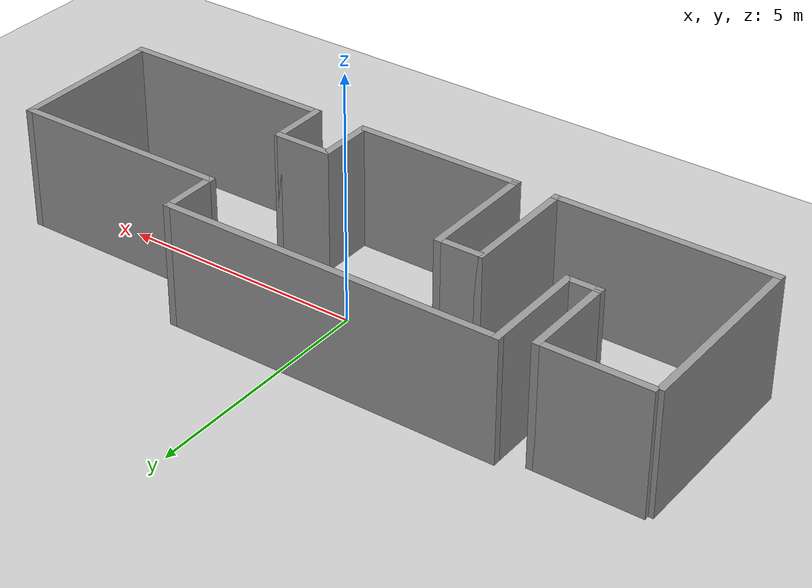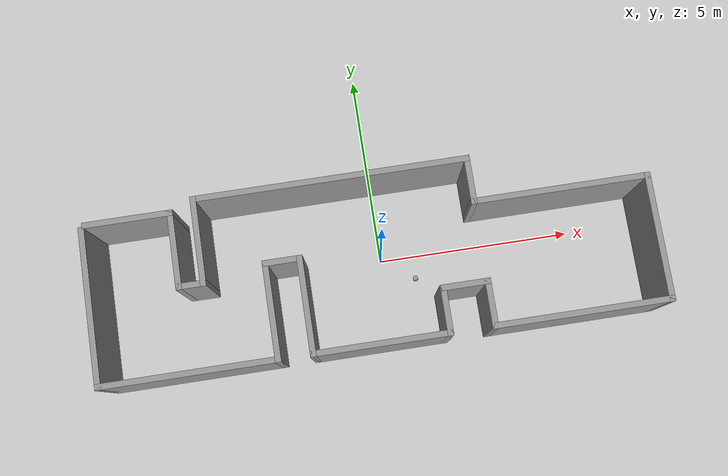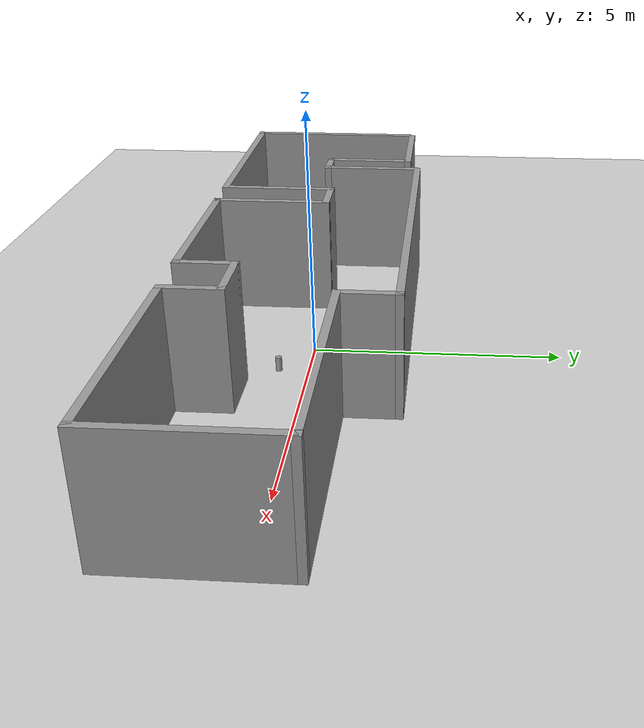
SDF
<sdf version="1.7">
 <world name="default">
  <light name="sun" type="directional">
   <pose>0 0 10 0 -0 0</pose>
   <diffuse>0.8 0.8 0.8 1</diffuse>
   <specular>0.2 0.2 0.2 1</specular>
   <attenuation>
    <range>1000</range>
    <constant>0.9</constant>
    <linear>0.01</linear>
    <quadratic>0.001</quadratic>
   </attenuation>
   <direction>-0.5 0.1 -0.9</direction>
   <spot><inner_angle>0</inner_angle><outer_angle>0</outer_angle><falloff>0</falloff></spot>
  </light>
  <model name="ground_plane">
   <static>1</static>
   <link name="link">
    <collision name="collision">
     <geometry><plane><normal>0 0 1</normal><size>100 100</size></plane></geometry>
     <surface>
      <contact><collide_bitmask>65535</collide_bitmask></contact>
      <friction><ode><mu>100</mu><mu2>50</mu2></ode></friction>
     </surface>
    </collision>
    <visual name="visual">
     <cast_shadows>0</cast_shadows>
     <geometry><plane><normal>0 0 1</normal><size>100 100</size></plane></geometry>
     <material>
      <script><uri>file://media/materials/scripts/gazebo.material</uri><name>Gazebo/Grey</name></script>
     </material>
    </visual>
   </link>
  </model>
  <gravity>0 0 -9.8</gravity>
  <magnetic_field>6e-06 2.3e-05 -4.2e-05</magnetic_field>
  <atmosphere type="adiabatic"/>
  <physics type="ode">
   <max_step_size>0.001</max_step_size>
   <real_time_factor>1</real_time_factor>
   <real_time_update_rate>1000</real_time_update_rate>
  </physics>
  <scene><ambient>0.4 0.4 0.4 1</ambient><background>0.7 0.7 0.7 1</background><shadows>1</shadows></scene>
  <spherical_coordinates>
   <surface_model>EARTH_WGS84</surface_model>
   <latitude_deg>0</latitude_deg>
   <longitude_deg>0</longitude_deg>
   <elevation>0</elevation>
   <heading_deg>0</heading_deg>
  </spherical_coordinates>
  <model name="my.world">
   <pose>-0.21418 -0.099615 0 0 -0 0</pose>
   <link name="Wall_0">
    <collision name="Wall_0_Collision">
     <geometry><box><size>4 0.15 2.5</size></box></geometry>
     <pose>0 0 1.25 0 -0 0</pose>
    </collision>
    <visual name="Wall_0_Visual">
     <pose>0 0 1.25 0 -0 0</pose>
     <geometry><box><size>4 0.15 2.5</size></box></geometry>
     <material>
      <script><uri>file://media/materials/scripts/gazebo.material</uri><name>Gazebo/Grey</name></script>
      <ambient>1 1 1 1</ambient>
     </material>
     <meta><layer>0</layer></meta>
    </visual>
    <pose>-7 -0.2825 0 0 -0 -1.5708</pose>
   </link>
   <link name="Wall_1">
    <collision name="Wall_1_Collision">
     <geometry><box><size>4.5 0.15 2.5</size></box></geometry>
     <pose>0 0 1.25 0 -0 0</pose>
    </collision>
    <visual name="Wall_1_Visual">
     <pose>0 0 1.25 0 -0 0</pose>
     <geometry><box><size>4.5 0.15 2.5</size></box></geometry>
     <material>
      <script><uri>file://media/materials/scripts/gazebo.material</uri><name>Gazebo/Grey</name></script>
      <ambient>1 1 1 1</ambient>
     </material>
     <meta><layer>0</layer></meta>
    </visual>
    <pose>-4.825 -2.2075 0 0 -0 0</pose>
   </link>
   <link name="Wall_10">
    <collision name="Wall_10_Collision">
     <geometry><box><size>3.25 0.15 2.5</size></box></geometry>
     <pose>0 0 1.25 0 -0 0</pose>
    </collision>
    <visual name="Wall_10_Visual">
     <pose>0 0 1.25 0 -0 0</pose>
     <geometry><box><size>3.25 0.15 2.5</size></box></geometry>
     <material>
      <script><uri>file://media/materials/scripts/gazebo.material</uri><name>Gazebo/Grey</name></script>
      <ambient>1 1 1 1</ambient>
     </material>
     <meta><layer>0</layer></meta>
    </visual>
    <pose>7 -0.6575 0 0 -0 1.5708</pose>
   </link>
   <link name="Wall_11">
    <collision name="Wall_11_Collision">
     <geometry><box><size>4.5 0.15 2.5</size></box></geometry>
     <pose>0 0 1.25 0 -0 0</pose>
    </collision>
    <visual name="Wall_11_Visual">
     <pose>0 0 1.25 0 -0 0</pose>
     <geometry><box><size>4.5 0.15 2.5</size></box></geometry>
     <material>
      <script><uri>file://media/materials/scripts/gazebo.material</uri><name>Gazebo/Grey</name></script>
      <ambient>1 1 1 1</ambient>
     </material>
     <meta><layer>0</layer></meta>
    </visual>
    <pose>4.825 0.8925 0 0 -0 3.14159</pose>
   </link>
   <link name="Wall_12">
    <collision name="Wall_12_Collision">
     <geometry><box><size>1.25 0.15 2.5</size></box></geometry>
     <pose>0 0 1.25 0 -0 0</pose>
    </collision>
    <visual name="Wall_12_Visual">
     <pose>0 0 1.25 0 -0 0</pose>
     <geometry><box><size>1.25 0.15 2.5</size></box></geometry>
     <material>
      <script><uri>file://media/materials/scripts/gazebo.material</uri><name>Gazebo/Grey</name></script>
      <ambient>1 1 1 1</ambient>
     </material>
     <meta><layer>0</layer></meta>
    </visual>
    <pose>2.65 1.4425 0 0 -0 1.5708</pose>
   </link>
   <link name="Wall_13">
    <collision name="Wall_13_Collision">
     <geometry><box><size>7 0.15 2.5</size></box></geometry>
     <pose>0 0 1.25 0 -0 0</pose>
    </collision>
    <visual name="Wall_13_Visual">
     <pose>0 0 1.25 0 -0 0</pose>
     <geometry><box><size>7 0.15 2.5</size></box></geometry>
     <material>
      <script><uri>file://media/materials/scripts/gazebo.material</uri><name>Gazebo/Grey</name></script>
      <ambient>1 1 1 1</ambient>
     </material>
     <meta><layer>0</layer></meta>
    </visual>
    <pose>-0.775 1.9925 0 0 -0 3.14159</pose>
   </link>
   <link name="Wall_14">
    <collision name="Wall_14_Collision">
     <geometry><box><size>2.25 0.15 2.5</size></box></geometry>
     <pose>0 0 1.25 0 -0 0</pose>
    </collision>
    <visual name="Wall_14_Visual">
     <pose>0 0 1.25 0 -0 0</pose>
     <geometry><box><size>2.25 0.15 2.5</size></box></geometry>
     <material>
      <script><uri>file://media/materials/scripts/gazebo.material</uri><name>Gazebo/Grey</name></script>
      <ambient>1 1 1 1</ambient>
     </material>
     <meta><layer>0</layer></meta>
    </visual>
    <pose>-4.2 0.9425 0 0 -0 -1.5708</pose>
   </link>
   <link name="Wall_15">
    <collision name="Wall_15_Collision">
     <geometry><box><size>0.75 0.15 2.5</size></box></geometry>
     <pose>0 0 1.25 0 -0 0</pose>
    </collision>
    <visual name="Wall_15_Visual">
     <pose>0 0 1.25 0 -0 0</pose>
     <geometry><box><size>0.75 0.15 2.5</size></box></geometry>
     <material>
      <script><uri>file://media/materials/scripts/gazebo.material</uri><name>Gazebo/Grey</name></script>
      <ambient>1 1 1 1</ambient>
     </material>
     <meta><layer>0</layer></meta>
    </visual>
    <pose>-4.5 -0.1075 0 0 -0 3.14159</pose>
   </link>
   <link name="Wall_16">
    <collision name="Wall_16_Collision">
     <geometry><box><size>2 0.15 2.5</size></box></geometry>
     <pose>0 0 1.25 0 -0 0</pose>
    </collision>
    <visual name="Wall_16_Visual">
     <pose>0 0 1.25 0 -0 0</pose>
     <geometry><box><size>2 0.15 2.5</size></box></geometry>
     <material>
      <script><uri>file://media/materials/scripts/gazebo.material</uri><name>Gazebo/Grey</name></script>
      <ambient>1 1 1 1</ambient>
     </material>
     <meta><layer>0</layer></meta>
    </visual>
    <pose>-4.8 0.8175 0 0 -0 1.5708</pose>
   </link>
   <link name="Wall_17">
    <collision name="Wall_17_Collision">
     <geometry><box><size>2.25 0.15 2.5</size></box></geometry>
     <pose>0 0 1.25 0 -0 0</pose>
    </collision>
    <visual name="Wall_17_Visual">
     <pose>0 0 1.25 0 -0 0</pose>
     <geometry><box><size>2.25 0.15 2.5</size></box></geometry>
     <material>
      <script><uri>file://media/materials/scripts/gazebo.material</uri><name>Gazebo/Grey</name></script>
      <ambient>1 1 1 1</ambient>
     </material>
     <meta><layer>0</layer></meta>
    </visual>
    <pose>-5.85 1.7425 0 0 -0 3.14159</pose>
   </link>
   <link name="Wall_2">
    <collision name="Wall_2_Collision">
     <geometry><box><size>2.5 0.15 2.5</size></box></geometry>
     <pose>0 0 1.25 0 -0 0</pose>
    </collision>
    <visual name="Wall_2_Visual">
     <pose>0 0 1.25 0 -0 0</pose>
     <geometry><box><size>2.5 0.15 2.5</size></box></geometry>
     <material>
      <script><uri>file://media/materials/scripts/gazebo.material</uri><name>Gazebo/Grey</name></script>
      <ambient>1 1 1 1</ambient>
     </material>
     <meta><layer>0</layer></meta>
    </visual>
    <pose>-2.65 -1.0325 0 0 -0 1.5708</pose>
   </link>
   <link name="Wall_3">
    <collision name="Wall_3_Collision">
     <geometry><box><size>1 0.15 2.5</size></box></geometry>
     <pose>0 0 1.25 0 -0 0</pose>
    </collision>
    <visual name="Wall_3_Visual">
     <pose>0 0 1.25 0 -0 0</pose>
     <geometry><box><size>1 0.15 2.5</size></box></geometry>
     <material>
      <script><uri>file://media/materials/scripts/gazebo.material</uri><name>Gazebo/Grey</name></script>
      <ambient>1 1 1 1</ambient>
     </material>
     <meta><layer>0</layer></meta>
    </visual>
    <pose>-2.225 0.1425 0 0 -0 0</pose>
   </link>
   <link name="Wall_4">
    <collision name="Wall_4_Collision">
     <geometry><box><size>2.5 0.15 2.5</size></box></geometry>
     <pose>0 0 1.25 0 -0 0</pose>
    </collision>
    <visual name="Wall_4_Visual">
     <pose>0 0 1.25 0 -0 0</pose>
     <geometry><box><size>2.5 0.15 2.5</size></box></geometry>
     <material>
      <script><uri>file://media/materials/scripts/gazebo.material</uri><name>Gazebo/Grey</name></script>
      <ambient>1 1 1 1</ambient>
     </material>
     <meta><layer>0</layer></meta>
    </visual>
    <pose>-1.8 -1.0325 0 0 -0 -1.5708</pose>
   </link>
   <link name="Wall_5">
    <collision name="Wall_5_Collision">
     <geometry><box><size>3.5 0.15 2.5</size></box></geometry>
     <pose>0 0 1.25 0 -0 0</pose>
    </collision>
    <visual name="Wall_5_Visual">
     <pose>0 0 1.25 0 -0 0</pose>
     <geometry><box><size>3.5 0.15 2.5</size></box></geometry>
     <material>
      <script><uri>file://media/materials/scripts/gazebo.material</uri><name>Gazebo/Grey</name></script>
      <ambient>1 1 1 1</ambient>
     </material>
     <meta><layer>0</layer></meta>
    </visual>
    <pose>-0.125 -2.2075 0 0 -0 0</pose>
   </link>
   <link name="Wall_6">
    <collision name="Wall_6_Collision">
     <geometry><box><size>1.25 0.15 2.5</size></box></geometry>
     <pose>0 0 1.25 0 -0 0</pose>
    </collision>
    <visual name="Wall_6_Visual">
     <pose>0 0 1.25 0 -0 0</pose>
     <geometry><box><size>1.25 0.15 2.5</size></box></geometry>
     <material>
      <script><uri>file://media/materials/scripts/gazebo.material</uri><name>Gazebo/Grey</name></script>
      <ambient>1 1 1 1</ambient>
     </material>
     <meta><layer>0</layer></meta>
    </visual>
    <pose>1.55 -1.6575 0 0 -0 1.5708</pose>
   </link>
   <link name="Wall_7">
    <collision name="Wall_7_Collision">
     <geometry><box><size>1.25 0.15 2.5</size></box></geometry>
     <pose>0 0 1.25 0 -0 0</pose>
    </collision>
    <visual name="Wall_7_Visual">
     <pose>0 0 1.25 0 -0 0</pose>
     <geometry><box><size>1.25 0.15 2.5</size></box></geometry>
     <material>
      <script><uri>file://media/materials/scripts/gazebo.material</uri><name>Gazebo/Grey</name></script>
      <ambient>1 1 1 1</ambient>
     </material>
     <meta><layer>0</layer></meta>
    </visual>
    <pose>2.1 -1.1075 0 0 -0 0</pose>
   </link>
   <link name="Wall_8">
    <collision name="Wall_8_Collision">
     <geometry><box><size>1.25 0.15 2.5</size></box></geometry>
     <pose>0 0 1.25 0 -0 0</pose>
    </collision>
    <visual name="Wall_8_Visual">
     <pose>0 0 1.25 0 -0 0</pose>
     <geometry><box><size>1.25 0.15 2.5</size></box></geometry>
     <material>
      <script><uri>file://media/materials/scripts/gazebo.material</uri><name>Gazebo/Grey</name></script>
      <ambient>1 1 1 1</ambient>
     </material>
     <meta><layer>0</layer></meta>
    </visual>
    <pose>2.65 -1.6575 0 0 -0 -1.5708</pose>
   </link>
   <link name="Wall_9">
    <collision name="Wall_9_Collision">
     <geometry><box><size>4.5 0.15 2.5</size></box></geometry>
     <pose>0 0 1.25 0 -0 0</pose>
    </collision>
    <visual name="Wall_9_Visual">
     <pose>0 0 1.25 0 -0 0</pose>
     <geometry><box><size>4.5 0.15 2.5</size></box></geometry>
     <material>
      <script><uri>file://media/materials/scripts/gazebo.material</uri><name>Gazebo/Grey</name></script>
      <ambient>1 1 1 1</ambient>
     </material>
     <meta><layer>0</layer></meta>
    </visual>
    <pose>4.825 -2.2075 0 0 -0 0</pose>
   </link>
   <static>1</static>
  </model>
  <model name="unit_cylinder">
   <pose>0.84511 -0.591877 0.063573 0.04429 0.064918 -2.24865</pose>
   <link name="link">
    <inertial>
     <mass>1</mass>
     <inertia><ixx>0.145833</ixx><ixy>0</ixy><ixz>0</ixz><iyy>0.145833</iyy><iyz>0</iyz><izz>0.125</izz></inertia>
    </inertial>
    <collision name="collision">
     <geometry><cylinder><radius>0.0634865</radius><length>0.412665</length></cylinder></geometry>
    </collision>
    <visual name="visual">
     <geometry><cylinder><radius>0.0634865</radius><length>0.412665</length></cylinder></geometry>
     <material>
      <script><name>Gazebo/Grey</name><uri>file://media/materials/scripts/gazebo.material</uri></script>
     </material>
    </visual>
   </link>
  </model>
 </world>
</sdf>
